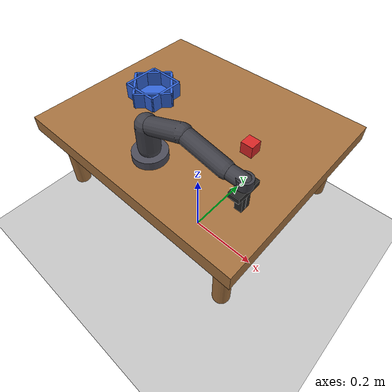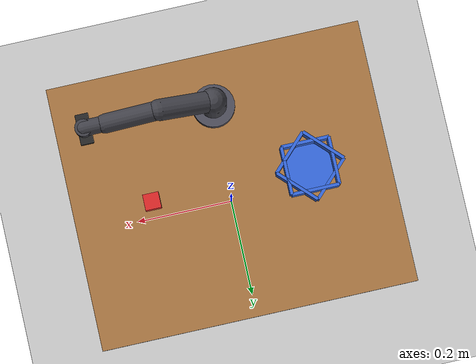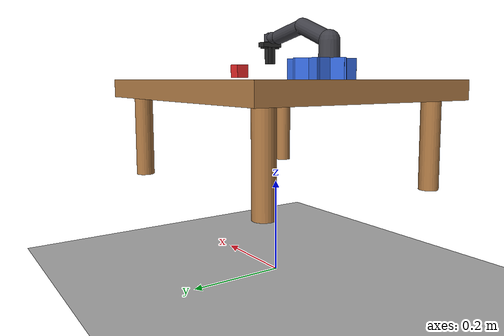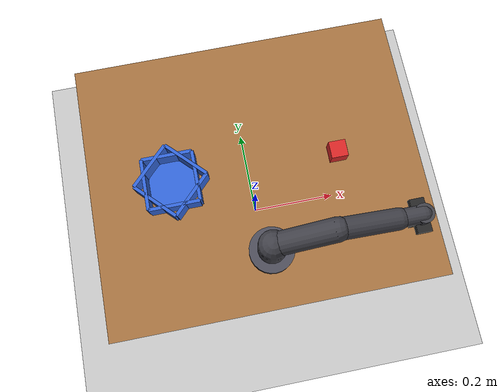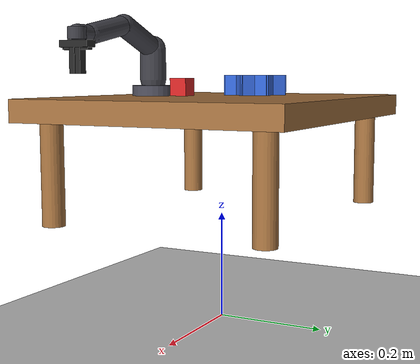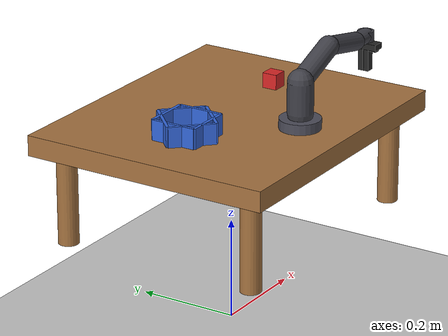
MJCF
<mujoco model="so101_pick_place">
  <compiler angle="radian" autolimits="true"/>

  <option timestep="0.002" gravity="0 0 -9.81" integrator="Euler">
    <flag contact="enable"/>
  </option>

  <default>
    <joint armature="0.02" damping="1.5"/>
    <geom condim="4" friction="1.0 0.005 0.001" solimp="0.95 0.99 0.001 0.5 2" solref="0.02 1.0"/>
    <position kp="100" ctrlrange="-3.14159 3.14159"/>
  </default>

  <visual>
    <global offwidth="960" offheight="720"/>
    <quality shadowsize="2048"/>
    <map znear="0.01" zfar="10"/>
  </visual>

  <!-- ==================== ASSETS ==================== -->
  <asset>
    <texture name="grid" type="2d" builtin="checker" rgb1="0.85 0.85 0.85" rgb2="0.7 0.7 0.7" width="256" height="256"/>
    <material name="floor_mat" texture="grid" texrepeat="8 8" reflectance="0.1"/>
    <texture name="wood" type="2d" builtin="flat" rgb1="0.65 0.45 0.25" rgb2="0.55 0.35 0.18" width="256" height="256" mark="random" markrgb="0.6 0.4 0.2"/>
    <material name="wood_mat" texture="wood" reflectance="0.05"/>
    <material name="arm_mat" rgba="0.25 0.25 0.28 1" specular="0.5" shininess="0.5"/>
    <material name="finger_mat" rgba="0.15 0.15 0.15 1" specular="0.3"/>
    <material name="box_mat" rgba="0.85 0.15 0.15 1" specular="0.3" shininess="0.3"/>
    <material name="bowl_mat" rgba="0.2 0.4 0.85 1" specular="0.4" shininess="0.5"/>
    <material name="base_mat" rgba="0.3 0.3 0.35 1" specular="0.5" shininess="0.5"/>
  </asset>

  <!-- ==================== WORLD ==================== -->
  <worldbody>
    <!-- Floor -->
    <geom name="floor" type="plane" size="1 1 0.01" pos="0 0 0" material="floor_mat" contype="1" conaffinity="1"/>

    <!-- Ambient and directional lights -->
    <light name="overhead" directional="true" diffuse="0.8 0.8 0.8" specular="0.3 0.3 0.3" pos="0 0 2" dir="0 0 -1" castshadow="true"/>
    <light name="side_fill" directional="false" diffuse="0.4 0.4 0.4" specular="0.1 0.1 0.1" pos="0.5 -0.5 1.2"/>
    <light name="back_fill" directional="false" diffuse="0.2 0.2 0.2" specular="0.05 0.05 0.05" pos="-0.3 0.4 1.0"/>

    <!-- Overhead camera -->
    <!-- Overhead camera — full view of table, arm, and objects -->
    <camera name="webcam" pos="0.0 -0.5 1.1" quat="0.92 0.39 0 0" fovy="60"/>

    <!-- ==================== TABLE ==================== -->
    <body name="table" pos="0 0 0.2">
      <geom name="table_top" type="box" size="0.30 0.25 0.02" pos="0 0 0.20" material="wood_mat" contype="1" conaffinity="1" mass="10"/>
      <!-- Table legs -->
      <geom type="cylinder" size="0.02 0.10" pos="0.25 0.20 0.10" material="wood_mat"/>
      <geom type="cylinder" size="0.02 0.10" pos="-0.25 0.20 0.10" material="wood_mat"/>
      <geom type="cylinder" size="0.02 0.10" pos="0.25 -0.20 0.10" material="wood_mat"/>
      <geom type="cylinder" size="0.02 0.10" pos="-0.25 -0.20 0.10" material="wood_mat"/>
    </body>

    <!-- ==================== ROBOT ARM ==================== -->
    <body name="base_link" pos="0 -0.15 0.42">
      <geom name="base" type="cylinder" size="0.04 0.02" material="base_mat" mass="1.0"/>

      <!-- Joint 1: Shoulder Pan (yaw) -->
      <body name="shoulder_link" pos="0 0 0.03">
        <joint name="shoulder_pan" type="hinge" axis="0 0 1" range="-3.14159 3.14159"/>
        <geom name="shoulder_geom" type="capsule" fromto="0 0 0 0 0 0.06" size="0.025" material="arm_mat" mass="0.3"/>

        <!-- Joint 2: Shoulder Lift (pitch) -->
        <body name="upper_arm_link" pos="0 0 0.06">
          <joint name="shoulder_lift" type="hinge" axis="0 1 0" range="-1.5708 1.5708"/>
          <geom name="upper_arm_geom" type="capsule" fromto="0 0 0 0.10 0 0.04" size="0.02" material="arm_mat" mass="0.2"/>

          <!-- Joint 3: Elbow Flex (pitch) -->
          <body name="forearm_link" pos="0.10 0 0.04">
            <joint name="elbow_flex" type="hinge" axis="0 1 0" range="-3.14159 0"/>
            <geom name="forearm_geom" type="capsule" fromto="0 0 0 0.10 0 -0.02" size="0.018" material="arm_mat" mass="0.15"/>

            <!-- Joint 4: Wrist Flex (pitch) -->
            <body name="wrist_flex_link" pos="0.10 0 -0.02">
              <joint name="wrist_flex" type="hinge" axis="0 1 0" range="-1.5708 1.5708"/>
              <geom name="wrist_flex_geom" type="capsule" fromto="0 0 0 0.04 0 0" size="0.015" material="arm_mat" mass="0.1"/>

              <!-- Joint 5: Wrist Roll (roll) -->
              <body name="wrist_roll_link" pos="0.04 0 0">
                <joint name="wrist_roll" type="hinge" axis="1 0 0" range="-3.14159 3.14159"/>
                <geom name="wrist_roll_geom" type="cylinder" size="0.016 0.01" material="arm_mat" mass="0.05"/>

                <!-- Wrist-mounted camera -->
                <!-- Wrist camera: mounted above gripper, looking down at the fingers/workspace -->
                <!-- Wrist camera: looks along -local_z toward the gripper/workspace -->
                <!-- Wrist camera: looks down toward gripper/workspace -->
                <!-- Wrist camera: mounted on gripper mount, looking forward/down through the fingers -->
                <camera name="arm_cam" pos="0 0 -0.025" xyaxes="0 1 0 0 0 1" fovy="90"/>

                <!-- End-effector site (at grasp center between finger pads) -->
                <!-- EE site at center of finger pads (invisible — for IK only) -->
                <!-- EE site at grasp center (invisible) -->
                <site name="ee_site" pos="0.0 0 -0.046" size="0.001" rgba="0 0 0 0"/>
                <!-- finger pads center at body(-0.024) + geom(0, +-0.006, -0.022) = wrist + (0, +-0.006, -0.046) -->

                <!-- ==================== GRIPPER ==================== -->
                <!-- Parallel jaw gripper. Fixed mount plate at wrist, two sliding
                     finger prongs. qpos=0 -> closed, qpos=0.04 -> open. -->

                <!-- Fixed gripper mount plate (always attached to wrist) -->
                <geom name="gripper_mount" type="box" size="0.012 0.028 0.006" pos="0 0 -0.018"
                      material="finger_mat" mass="0.02"/>

                <!-- Left finger: slides along +Y -->
                <body name="left_finger" pos="0.0 0.0 -0.024">
                  <joint name="finger_left" type="slide" axis="0 1 0" range="0 0.04" damping="0.3"/>
                  <!-- Horizontal slider bar (stays connected to mount visually) -->
                  <geom name="left_finger_slider" type="box" size="0.006 0.018 0.004" pos="0 0.008 0"
                        material="finger_mat" mass="0.003" contype="0" conaffinity="0"/>
                  <!-- Vertical finger pad (gripping surface) -->
                  <geom name="left_finger_pad" type="box" size="0.008 0.005 0.022" pos="0 0.006 -0.022"
                        material="finger_mat" mass="0.01"
                        condim="4" friction="5.0 0.01 0.001"
                        solimp="0.95 0.99 0.001 0.5 2" solref="0.02 1.0"/>
                </body>

                <!-- Right finger: slides along -Y -->
                <body name="right_finger" pos="0.0 0.0 -0.024">
                  <joint name="finger_right" type="slide" axis="0 -1 0" range="0 0.04" damping="0.3"/>
                  <!-- Horizontal slider bar -->
                  <geom name="right_finger_slider" type="box" size="0.006 0.018 0.004" pos="0 -0.008 0"
                        material="finger_mat" mass="0.003" contype="0" conaffinity="0"/>
                  <!-- Vertical finger pad -->
                  <geom name="right_finger_pad" type="box" size="0.008 0.005 0.022" pos="0 -0.006 -0.022"
                        material="finger_mat" mass="0.01"
                        condim="4" friction="5.0 0.01 0.001"
                        solimp="0.95 0.99 0.001 0.5 2" solref="0.02 1.0"/>
                </body>

              </body> <!-- wrist_roll_link -->
            </body> <!-- wrist_flex_link -->
          </body> <!-- forearm_link -->
        </body> <!-- upper_arm_link -->
      </body> <!-- shoulder_link -->
    </body> <!-- base_link -->

    <!-- ==================== OBJECTS ==================== -->

    <!-- Graspable box -->
    <body name="box" pos="0.15 0.0 0.44">
      <freejoint name="box_joint"/>
      <geom name="box_geom" type="box" size="0.015 0.015 0.015"
            material="box_mat" mass="0.03"
            condim="4" friction="1.5 0.005 0.001"
            solimp="0.95 0.99 0.001 0.5 2" solref="0.02 1.0"
            contype="1" conaffinity="1"/>
    </body>

    <!-- Bowl (static) -->
    <body name="bowl" pos="-0.15 0.0 0.42">
      <!-- Bowl base (thin disc) -->
      <geom name="bowl_base" type="cylinder" size="0.045 0.003" pos="0 0 0" material="bowl_mat" contype="1" conaffinity="1"/>
      <!-- Bowl walls (ring of thin boxes approximating a cylinder shell) -->
      <geom name="bowl_wall_front" type="box" size="0.003 0.045 0.02" pos="0.045 0 0.02" material="bowl_mat" contype="1" conaffinity="1"/>
      <geom name="bowl_wall_back" type="box" size="0.003 0.045 0.02" pos="-0.045 0 0.02" material="bowl_mat" contype="1" conaffinity="1"/>
      <geom name="bowl_wall_left" type="box" size="0.045 0.003 0.02" pos="0 0.045 0.02" material="bowl_mat" contype="1" conaffinity="1"/>
      <geom name="bowl_wall_right" type="box" size="0.045 0.003 0.02" pos="0 -0.045 0.02" material="bowl_mat" contype="1" conaffinity="1"/>
      <!-- Diagonal walls for rounder shape -->
      <geom name="bowl_wall_fl" type="box" size="0.003 0.045 0.02" pos="0.032 0.032 0.02" euler="0 0 0.785" material="bowl_mat" contype="1" conaffinity="1"/>
      <geom name="bowl_wall_fr" type="box" size="0.003 0.045 0.02" pos="0.032 -0.032 0.02" euler="0 0 -0.785" material="bowl_mat" contype="1" conaffinity="1"/>
      <geom name="bowl_wall_bl" type="box" size="0.003 0.045 0.02" pos="-0.032 0.032 0.02" euler="0 0 -0.785" material="bowl_mat" contype="1" conaffinity="1"/>
      <geom name="bowl_wall_br" type="box" size="0.003 0.045 0.02" pos="-0.032 -0.032 0.02" euler="0 0 0.785" material="bowl_mat" contype="1" conaffinity="1"/>
    </body>

  </worldbody>

  <!-- ==================== ACTUATORS ==================== -->
  <actuator>
    <position name="act_shoulder_pan"  joint="shoulder_pan"  kp="80" ctrlrange="-3.14159 3.14159"/>
    <position name="act_shoulder_lift" joint="shoulder_lift" kp="80" ctrlrange="-1.5708 1.5708"/>
    <position name="act_elbow_flex"    joint="elbow_flex"    kp="80" ctrlrange="-3.14159 0"/>
    <position name="act_wrist_flex"    joint="wrist_flex"    kp="60"  ctrlrange="-1.5708 1.5708"/>
    <position name="act_wrist_roll"    joint="wrist_roll"    kp="40"  ctrlrange="-3.14159 3.14159"/>
    <position name="act_finger_left"   joint="finger_left"   kp="15"  ctrlrange="0 0.04"/>
    <position name="act_finger_right"  joint="finger_right"  kp="15"  ctrlrange="0 0.04"/>
  </actuator>

  <equality>
    <!-- Couple gripper fingers to move symmetrically -->
    <joint joint1="finger_left" joint2="finger_right" polycoef="0 1 0 0 0"/>
  </equality>

  <!-- ==================== SENSORS ==================== -->
  <sensor>
    <jointpos name="sen_shoulder_pan"  joint="shoulder_pan"/>
    <jointpos name="sen_shoulder_lift" joint="shoulder_lift"/>
    <jointpos name="sen_elbow_flex"    joint="elbow_flex"/>
    <jointpos name="sen_wrist_flex"    joint="wrist_flex"/>
    <jointpos name="sen_wrist_roll"    joint="wrist_roll"/>
    <jointpos name="sen_finger_left"   joint="finger_left"/>
    <framepos  name="sen_ee_pos"  objtype="site" objname="ee_site"/>
    <framequat name="sen_ee_quat" objtype="site" objname="ee_site"/>
  </sensor>

</mujoco>
